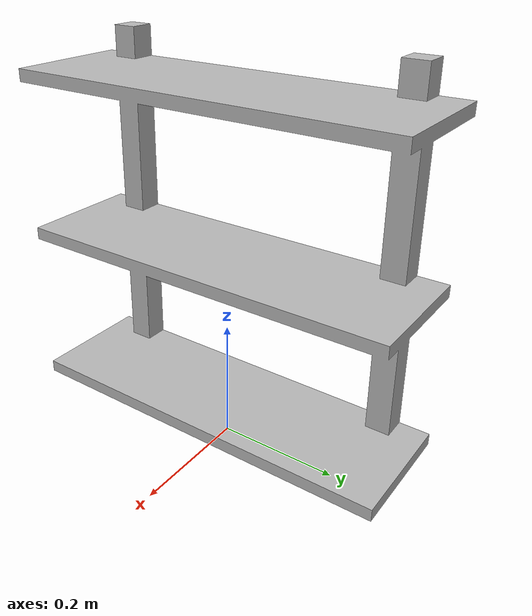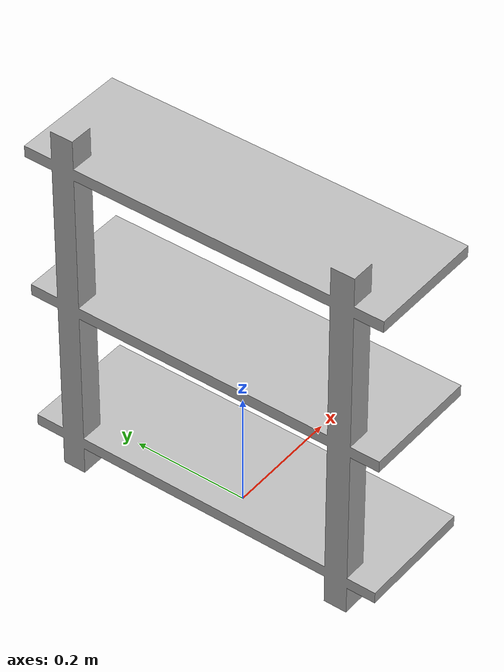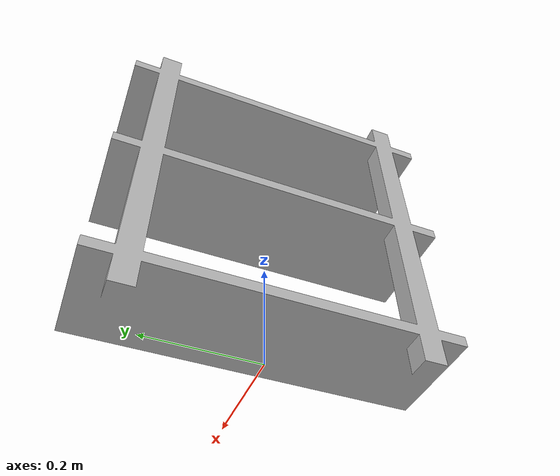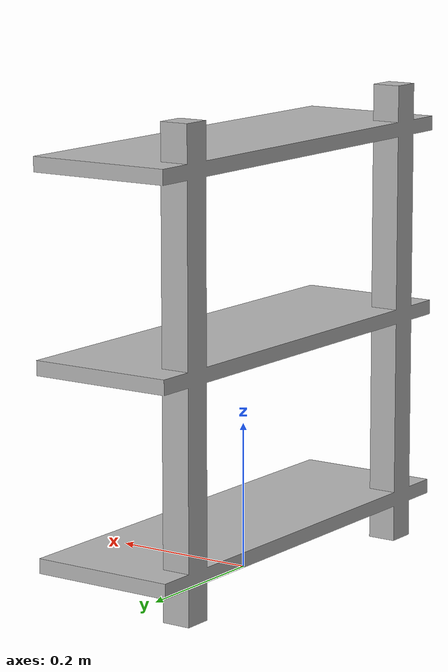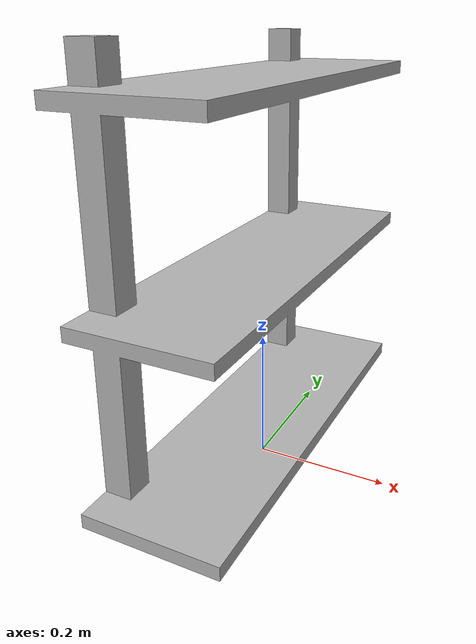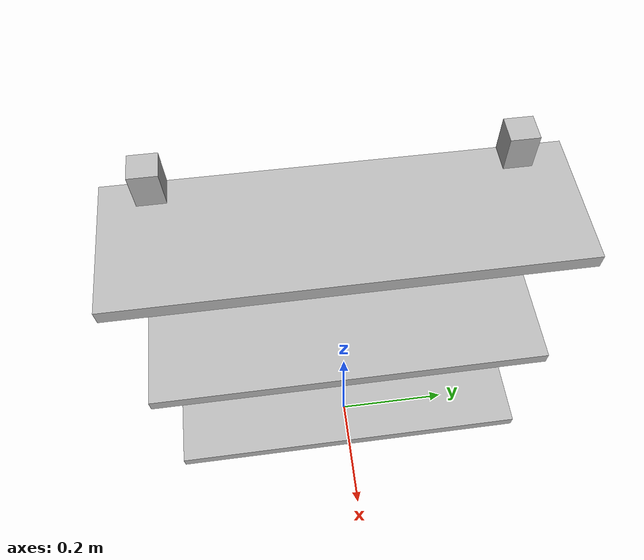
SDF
<?xml version='1.0'?>
<sdf version='1.4'>
  <model name='456'>
    <pose>0 0 0 0 0 0</pose>
    <static>true</static>
    <link name='link'>
      <collision name='collision'>
        <pose>0 0 0 0 0 0</pose>
        <geometry>
          <box>
            <size>0.2 0.63 2</size>
          </box>
        </geometry>
      </collision>
      <visual name='visual'>
        <pose>0 0 0 0 0 0</pose>
        <geometry>
          <mesh><uri>model://456/456.dae</uri></mesh>
        </geometry>
      </visual>
    </link>
  </model>
</sdf>
